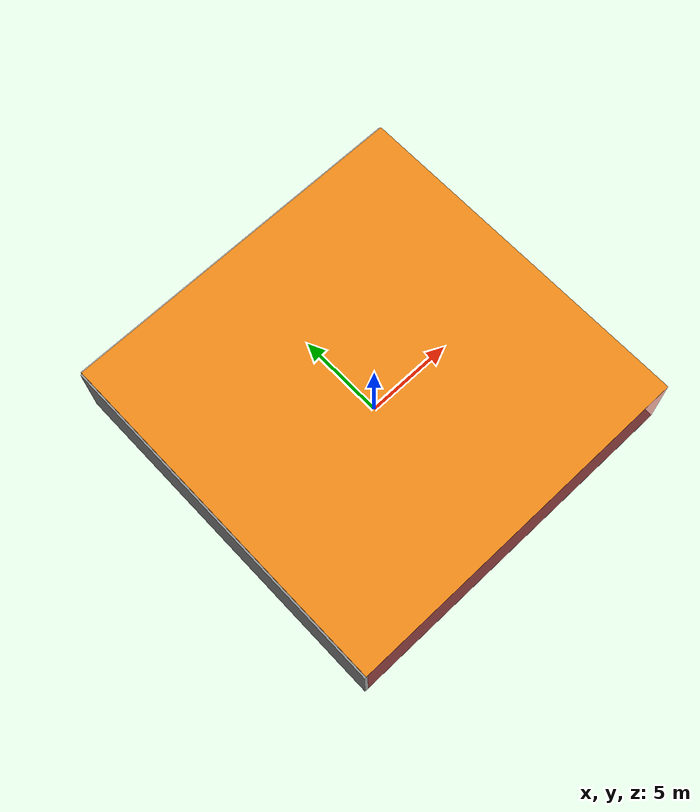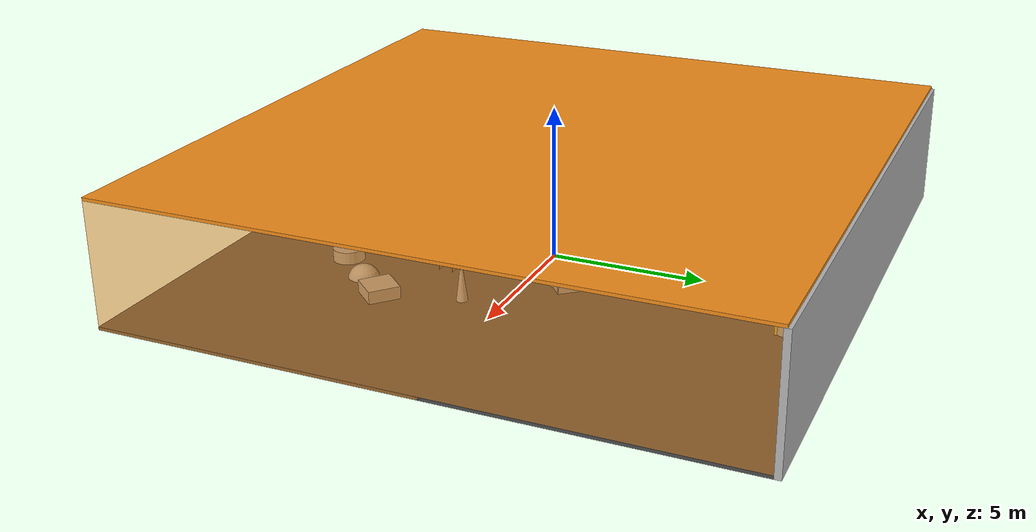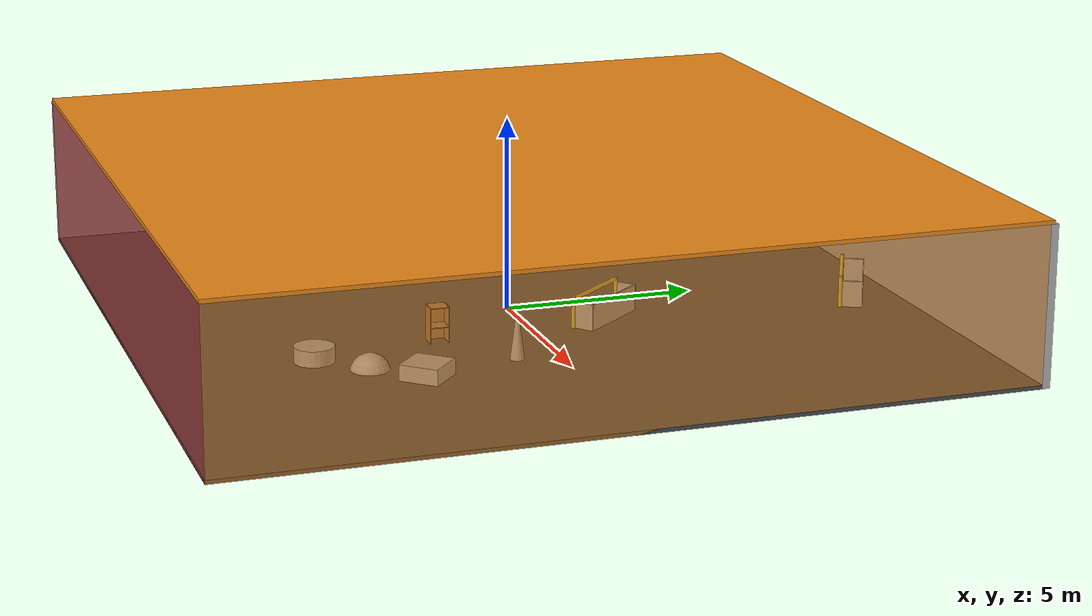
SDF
<sdf version="1.4">
 <world name="default">
  <physics type="ode">
   <max_step_size>0.001</max_step_size>
   <real_time_factor>1</real_time_factor>
   <real_time_update_rate>1000</real_time_update_rate>
   <gravity>0 0 -9.8</gravity>
  </physics>
  <scene><ambient>0.4 0.4 0.4 1</ambient><background>0.7 0.7 0.7 1</background><shadows>1</shadows></scene>
  <model name="Surrounding">
   <static>1</static>
   <link name="Ceiling">
    <collision name="Ceiling_Collision"><geometry><box><size>20 20 0.1</size></box></geometry></collision>
    <visual name="Ceiling_Visual">
     <geometry><box><size>20 20 0.1</size></box></geometry>
     <material>
      <script><uri>file://media/materials/scripts/gazebo.material</uri><name>Gazebo/Orange</name></script>
     </material>
    </visual>
    <pose>0 0 4.05 0 0 0</pose>
   </link>
   <link name="Wall_South">
    <collision name="Wall_South_Collision">
     <geometry><box><size>20 0 4</size></box></geometry>
     <pose>0 0 2 0 -0 0</pose>
    </collision>
    <visual name="Wall_South_Visual">
     <pose>0 0 2 0 -0 0</pose>
     <geometry><box><size>20 0 4</size></box></geometry>
     <material>
      <script><uri>file://media/materials/scripts/gazebo.material</uri><name>Gazebo/RedTransparent</name></script>
     </material>
    </visual>
    <velocity_decay><linear>0</linear><angular>0</angular></velocity_decay>
    <pose>0 -10 0 0 -0 0</pose>
   </link>
   <link name="Wall_East">
    <collision name="Wall_21_Collision">
     <geometry><box><size>20 0 4</size></box></geometry>
     <pose>0 0 2 0 -0 0</pose>
    </collision>
    <visual name="Wall_21_Visual">
     <pose>0 0 2 0 -0 0</pose>
     <geometry><box><size>20 0 4</size></box></geometry>
     <material>
      <script>
       <uri>file://media/materials/scripts/gazebo.material</uri>
       <name>Gazebo/OrangeTransparent</name>
      </script>
     </material>
    </visual>
    <velocity_decay><linear>0</linear><angular>0</angular></velocity_decay>
    <pose>10 0 0 0 -0 1.5708</pose>
   </link>
   <link name="Wall_North">
    <collision name="Wall_22_Collision">
     <geometry><box><size>20 0.2 4</size></box></geometry>
     <pose>0 0 2 0 -0 0</pose>
    </collision>
    <visual name="Wall_22_Visual">
     <pose>0 0 2 0 -0 0</pose>
     <geometry><box><size>20 0.2 4</size></box></geometry>
     <material>
      <script><uri>file://media/materials/scripts/gazebo.material</uri><name>Gazebo/LightOn</name></script>
     </material>
    </visual>
    <velocity_decay><linear>0</linear><angular>0</angular></velocity_decay>
    <pose>0 10 0 0 -0 0</pose>
   </link>
   <link name="Wall_West">
    <collision name="Wall_23_Collision">
     <geometry><box><size>20 0.2 4</size></box></geometry>
     <pose>0 0 2 0 -0 0</pose>
    </collision>
    <visual name="Wall_23_Visual">
     <pose>0 0 2 0 -0 0</pose>
     <geometry><box><size>20 0.2 4</size></box></geometry>
     <material>
      <script><uri>file://media/materials/scripts/gazebo.material</uri><name>Gazebo/Grey</name></script>
     </material>
    </visual>
    <velocity_decay><linear>0</linear><angular>0</angular></velocity_decay>
    <pose>-10 0 0 0 0 -1.5708</pose>
   </link>
   <link name="Ground_link">
    <collision name="collision">
     <pose>0 0 .05 0 -0 0</pose>
     <geometry><box><size>20 20 0.1</size></box></geometry>
    </collision>
    <visual name="visual">
     <pose>0 0 .05 0 -0 0</pose>
     <geometry><box><size>20 20 0.1</size></box></geometry>
     <material>
      <script><uri>file://media/materials/scripts/gazebo.material</uri><name>Gazebo/DarkGrey</name></script>
     </material>
    </visual>
   </link>
   <static>1</static>
  </model>
  <spherical_coordinates>
   <surface_model>EARTH_WGS84</surface_model>
   <latitude_deg>0</latitude_deg>
   <longitude_deg>0</longitude_deg>
   <elevation>0</elevation>
   <heading_deg>0</heading_deg>
  </spherical_coordinates>
  <light name="lightball_0" type="diffuse">
   <diffuse>0.8 0.8 0.8 1</diffuse>
   <specular>0.2 0.2 0.2 1</specular>
   <attenuation>
    <range>100</range>
    <constant>0.7</constant>
    <linear>0.01</linear>
    <quadratic>0.001</quadratic>
   </attenuation>
   <direction>-0.5 0.1 -0.9</direction>
   <pose>6.06867081789 -4.10507115041 1.21616874122 0 0 0</pose>
  </light>
  <light name="lightball_1" type="diffuse">
   <diffuse>0.8 0.8 0.8 1</diffuse>
   <specular>0.2 0.2 0.2 1</specular>
   <attenuation>
    <range>100</range>
    <constant>0.7</constant>
    <linear>0.01</linear>
    <quadratic>0.001</quadratic>
   </attenuation>
   <direction>-0.5 0.1 -0.9</direction>
   <pose>-5.44548857633 -0.35757964352 3.54678665557 0 0 0</pose>
  </light>
  <light name="lightball_2" type="diffuse">
   <diffuse>0.8 0.8 0.8 1</diffuse>
   <specular>0.2 0.2 0.2 1</specular>
   <attenuation>
    <range>100</range>
    <constant>0.7</constant>
    <linear>0.01</linear>
    <quadratic>0.001</quadratic>
   </attenuation>
   <direction>-0.5 0.1 -0.9</direction>
   <pose>2.1569736367 4.44563193047 3.25477571428 0 0 0</pose>
  </light>
  <light name="lightball_3" type="diffuse">
   <diffuse>0.8 0.8 0.8 1</diffuse>
   <specular>0.2 0.2 0.2 1</specular>
   <attenuation>
    <range>100</range>
    <constant>0.7</constant>
    <linear>0.01</linear>
    <quadratic>0.001</quadratic>
   </attenuation>
   <direction>-0.5 0.1 -0.9</direction>
   <pose>5.97734675703 8.81728490342 2.46383802609 0 0 0</pose>
  </light>
  <light name="lightball_4" type="diffuse">
   <diffuse>0.8 0.8 0.8 1</diffuse>
   <specular>0.2 0.2 0.2 1</specular>
   <attenuation>
    <range>100</range>
    <constant>0.7</constant>
    <linear>0.01</linear>
    <quadratic>0.001</quadratic>
   </attenuation>
   <direction>-0.5 0.1 -0.9</direction>
   <pose>9.01586063674 4.50409735118 2.68272333396 0 0 0</pose>
  </light>
  <light name="lightball_5" type="diffuse">
   <diffuse>0.8 0.8 0.8 1</diffuse>
   <specular>0.2 0.2 0.2 1</specular>
   <attenuation>
    <range>100</range>
    <constant>0.7</constant>
    <linear>0.01</linear>
    <quadratic>0.001</quadratic>
   </attenuation>
   <direction>-0.5 0.1 -0.9</direction>
   <pose>8.71745820092 2.80027822657 1.9734715996 0 0 0</pose>
  </light>
  <light name="lightball_6" type="diffuse">
   <diffuse>0.8 0.8 0.8 1</diffuse>
   <specular>0.2 0.2 0.2 1</specular>
   <attenuation>
    <range>100</range>
    <constant>0.7</constant>
    <linear>0.01</linear>
    <quadratic>0.001</quadratic>
   </attenuation>
   <direction>-0.5 0.1 -0.9</direction>
   <pose>-2.03845335595 7.63053845238 2.80675748723 0 0 0</pose>
  </light>
  <light name="lightball_7" type="diffuse">
   <diffuse>0.8 0.8 0.8 1</diffuse>
   <specular>0.2 0.2 0.2 1</specular>
   <attenuation>
    <range>100</range>
    <constant>0.7</constant>
    <linear>0.01</linear>
    <quadratic>0.001</quadratic>
   </attenuation>
   <direction>-0.5 0.1 -0.9</direction>
   <pose>5.83951414098 5.43269864487 3.04342228621 0 0 0</pose>
  </light>
  <light name="lightball_8" type="diffuse">
   <diffuse>0.8 0.8 0.8 1</diffuse>
   <specular>0.2 0.2 0.2 1</specular>
   <attenuation>
    <range>100</range>
    <constant>0.7</constant>
    <linear>0.01</linear>
    <quadratic>0.001</quadratic>
   </attenuation>
   <direction>-0.5 0.1 -0.9</direction>
   <pose>-5.1045888561 -2.52899557573 0.609968221003 0 0 0</pose>
  </light>
  <light name="lightball_9" type="diffuse">
   <diffuse>0.8 0.8 0.8 1</diffuse>
   <specular>0.2 0.2 0.2 1</specular>
   <attenuation>
    <range>100</range>
    <constant>0.7</constant>
    <linear>0.01</linear>
    <quadratic>0.001</quadratic>
   </attenuation>
   <direction>-0.5 0.1 -0.9</direction>
   <pose>5.53389664622 -1.63762723593 3.84243179162 0 0 0</pose>
  </light>
  <light name="lightball_10" type="diffuse">
   <diffuse>0.8 0.8 0.8 1</diffuse>
   <specular>0.2 0.2 0.2 1</specular>
   <attenuation>
    <range>100</range>
    <constant>0.7</constant>
    <linear>0.01</linear>
    <quadratic>0.001</quadratic>
   </attenuation>
   <direction>-0.5 0.1 -0.9</direction>
   <pose>3.66514725138 -8.08853105154 0.774634860574 0 0 0</pose>
  </light>
  <light name="lightball_11" type="diffuse">
   <diffuse>0.8 0.8 0.8 1</diffuse>
   <specular>0.2 0.2 0.2 1</specular>
   <attenuation>
    <range>100</range>
    <constant>0.7</constant>
    <linear>0.01</linear>
    <quadratic>0.001</quadratic>
   </attenuation>
   <direction>-0.5 0.1 -0.9</direction>
   <pose>3.38103329548 9.06644948865 3.28641239229 0 0 0</pose>
  </light>
  <include><uri>model://cabinet</uri><pose>2.38652115289 -2.58736604925 0 0 0 3.11565323145</pose></include>
  <include>
   <uri>model://robocup_3Dsim_goal</uri>
   <pose>1.71901420231 1.7666767078 0 0 0 0.689573394632</pose>
  </include>
  <include>
   <uri>model://robocup_3Dsim_goal</uri>
   <pose>1.88541262083 8.52149347632 0 0 0 1.11448772211</pose>
  </include>
  <include>
   <uri>model://textured_shapes</uri>
   <pose>3.97917238034 -4.73774652501 0 0 0 2.41463718397</pose>
  </include>
  <include>
   <uri>model://construction_cone</uri>
   <pose>4.31926039472 -1.1634806681 0 0 0 1.32544126647</pose>
  </include>
 </world>
</sdf>

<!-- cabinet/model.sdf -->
<sdf version="1.5">
  <model name="cabinet">
    <static>true</static>
    <link name="cabinet_bottom_plate">
      <inertial>
        <pose>0 0 -1 0 0 0</pose>
        <inertia>
          <ixx>2.050000</ixx>
          <ixy>0</ixy>
          <ixz>0</ixz>
          <iyy>2.050000</iyy>
          <iyz>0</iyz>
          <izz>2.050000</izz>
        </inertia>
        <mass>25.000000</mass>
      </inertial>
      <collision name="cabinet_bottom_plate_geom">
        <pose>0 0 0.010000 0 0 0</pose>
        <geometry>
          <box>
            <size>0.450000 0.450000 0.020000</size>
          </box>
        </geometry>
      </collision>
      <visual name="cabinet_bottom_plate_geom_visual">
        <pose>0 0 0.010000 0 0 0</pose>
        <geometry>
          <box>
            <size>0.450000 0.450000 0.020000</size>
          </box>
        </geometry>
        <material>
          <script>
            <uri>model://media/materials/scripts/gazebo.material</uri>
            <name>Gazebo/Wood</name>
          </script>
        </material>
      </visual>
      <collision name="cabinet_bottom_plate_geom_cabinet_back_plate">
        <pose>0.235000 0 0.510000 0 0 0</pose>
        <geometry>
          <box>
            <size>0.020000 0.450000 1.020000</size>
          </box>
        </geometry>
      </collision>
      <visual name="cabinet_bottom_plate_geom_cabinet_back_plate_visual">
        <pose>0.235000 0 0.510000 0 0 0</pose>
        <geometry>
          <box>
            <size>0.020000 0.450000 1.020000</size>
          </box>
        </geometry>
        <material>
          <script>
            <uri>model://media/materials/scripts/gazebo.material</uri>
            <name>Gazebo/Wood</name>
          </script>
        </material>
      </visual>
      <collision name="cabinet_bottom_plate_geom_cabinet_left_plate">
        <pose>0 0.235000 0.510000 0 0 0</pose>
        <geometry>
          <box>
            <size>0.450000 0.020000 1.020000</size>
          </box>
        </geometry>
      </collision>
      <visual name="cabinet_bottom_plate_geom_cabinet_left_plate_visual">
        <pose>0 0.235000 0.510000 0 0 0</pose>
        <geometry>
          <box>
            <size>0.450000 0.020000 1.020000</size>
          </box>
        </geometry>
        <material>
          <script>
            <uri>model://media/materials/scripts/gazebo.material</uri>
            <name>Gazebo/Wood</name>
          </script>
        </material>
      </visual>
      <collision name="cabinet_bottom_plate_geom_cabinet_middle_plate">
        <pose>0 0 0.510000 0 0 0</pose>
        <geometry>
          <box>
            <size>0.450000 0.450000 0.020000</size>
          </box>
        </geometry>
      </collision>
      <visual name="cabinet_bottom_plate_geom_cabinet_middle_plate_visual">
        <pose>0 0 0.510000 0 0 0</pose>
        <geometry>
          <box>
            <size>0.450000 0.450000 0.020000</size>
          </box>
        </geometry>
        <material>
          <script>
            <uri>model://media/materials/scripts/gazebo.material</uri>
            <name>Gazebo/Wood</name>
          </script>
        </material>
      </visual>
      <collision name="cabinet_bottom_plate_geom_cabinet_right_plate">
        <pose>0 -0.235000 0.510000 0 0 0</pose>
        <geometry>
          <box>
            <size>0.450000 0.020000 1.020000</size>
          </box>
        </geometry>
      </collision>
      <visual name="cabinet_bottom_plate_geom_cabinet_right_plate_visual">
        <pose>0 -0.235000 0.510000 0 0 0</pose>
        <geometry>
          <box>
            <size>0.450000 0.020000 1.020000</size>
          </box>
        </geometry>
        <material>
          <script>
            <uri>model://media/materials/scripts/gazebo.material</uri>
            <name>Gazebo/Wood</name>
          </script>
        </material>
      </visual>
      <collision name="cabinet_bottom_plate_geom_cabinet_top_plate">
        <pose>0 0 1.010000 0 0 0</pose>
        <geometry>
          <box>
            <size>0.450000 0.450000 0.020000</size>
          </box>
        </geometry>
      </collision>
      <visual name="cabinet_bottom_plate_geom_cabinet_top_plate_visual">
        <pose>0 0 1.010000 0 0 0</pose>
        <geometry>
          <box>
            <size>0.450000 0.450000 0.020000</size>
          </box>
        </geometry>
        <material>
          <script>
            <uri>model://media/materials/scripts/gazebo.material</uri>
            <name>Gazebo/Wood</name>
          </script>
        </material>
      </visual>
    </link>
  </model>
</sdf>

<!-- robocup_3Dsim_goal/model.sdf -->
<sdf version="1.5">
  <model name="robocup_3d_goal">
    <static>true</static>
    <link name="left_post">
      <pose>0 1.05 0.45 0 0 0</pose>
      <collision name="collision">
        <geometry>
          <cylinder>
            <radius>0.05</radius>
            <length>0.9</length>
          </cylinder>
        </geometry>
      </collision>
      <visual name="visual">
        <geometry>
          <cylinder>
            <radius>0.05</radius>
            <length>0.9</length>
          </cylinder>
        </geometry>
        <material>
          <script>
            <uri>file://media/materials/scripts/gazebo.material</uri>
            <name>Gazebo/ZincYellow</name>
          </script>
        </material>
      </visual>
    </link>
    <link name="left_support_horiz_lower">
      <pose>0.30 1.05 0.01 0 0 0</pose>
      <collision name="collision">
        <geometry>
          <box>
            <size>0.50 0.02 0.02</size>
          </box>
        </geometry>
      </collision>
      <visual name="visual">
        <geometry>
          <box>
            <size>0.50 0.02 0.02</size>
          </box>
        </geometry>
        <material>
          <script>
            <uri>file://media/materials/scripts/gazebo.material</uri>
            <name>Gazebo/White</name>
          </script>
        </material>
      </visual>
    </link>
    <link name="left_support_horiz_upper">
      <pose>0.30 1.05 0.79 0 0 0</pose>
      <collision name="collision">
        <geometry>
          <box>
            <size>0.50 0.02 0.02</size>
          </box>
        </geometry>
      </collision>
      <visual name="visual">
        <geometry>
          <box>
            <size>0.50 0.02 0.02</size>
          </box>
        </geometry>
        <material>
          <script>
            <uri>file://media/materials/scripts/gazebo.material</uri>
            <name>Gazebo/White</name>
          </script>
        </material>
      </visual>
    </link>
    <link name="left_support_vertical">
      <pose>0.56 1.05 0.4 0 1.5708 0</pose>
      <collision name="collision">
        <geometry>
          <box>
            <size>0.80 0.02 0.02</size>
          </box>
        </geometry>
      </collision>
      <visual name="visual">
        <geometry>
          <box>
            <size>0.80 0.02 0.02</size>
          </box>
        </geometry>
        <material>
          <script>
            <uri>file://media/materials/scripts/gazebo.material</uri>
            <name>Gazebo/White</name>
          </script>
        </material>
      </visual>
    </link>
    <link name="right_support_horiz_lower">
      <pose>0.30 -1.05 0.01 0 0 0</pose>
      <collision name="collision">
        <geometry>
          <box>
            <size>0.50 0.02 0.02</size>
          </box>
        </geometry>
      </collision>
      <visual name="visual">
        <geometry>
          <box>
            <size>0.50 0.02 0.02</size>
          </box>
        </geometry>
        <material>
          <script>
            <uri>file://media/materials/scripts/gazebo.material</uri>
            <name>Gazebo/White</name>
          </script>
        </material>
      </visual>
    </link>
    <link name="right_support_horiz_upper">
      <pose>0.30 -1.05 0.79 0 0 0</pose>
      <collision name="collision">
        <geometry>
          <box>
            <size>0.50 0.02 0.02</size>
          </box>
        </geometry>
      </collision>
      <visual name="visual">
        <geometry>
          <box>
            <size>0.50 0.02 0.02</size>
          </box>
        </geometry>
        <material>
          <script>
            <uri>file://media/materials/scripts/gazebo.material</uri>
            <name>Gazebo/White</name>
          </script>
        </material>
      </visual>
    </link>
    <link name="right_support_vertical">
      <pose>0.56 -1.05 0.4 0 1.5708 0</pose>
      <collision name="collision">
        <geometry>
          <box>
            <size>0.80 0.02 0.02</size>
          </box>
        </geometry>
      </collision>
      <visual name="visual">
        <geometry>
          <box>
            <size>0.80 0.02 0.02</size>
          </box>
        </geometry>
        <material>
          <script>
            <uri>file://media/materials/scripts/gazebo.material</uri>
            <name>Gazebo/White</name>
          </script>
        </material>
      </visual>
    </link>
    <link name="center_support_horiz_lower">
      <pose>0.56 0 0.01 0 1.5708 0</pose>
      <collision name="collision">
        <geometry>
          <box>
            <size>0.02 2.08 0.02</size>
          </box>
        </geometry>
      </collision>
      <visual name="visual">
        <geometry>
          <box>
            <size>0.02 2.08 0.02</size>
          </box>
        </geometry>
        <material>
          <script>
            <uri>file://media/materials/scripts/gazebo.material</uri>
            <name>Gazebo/White</name>
          </script>
        </material>
      </visual>
    </link>
    <link name="center_support_horiz_upper">
      <pose>0.56 0 0.79 0 1.5708 0</pose>
      <collision name="collision">
        <geometry>
          <box>
            <size>0.02 2.08 0.02</size>
          </box>
        </geometry>
      </collision>
      <visual name="visual">
        <geometry>
          <box>
            <size>0.02 2.08 0.02</size>
          </box>
        </geometry>
        <material>
          <script>
            <uri>file://media/materials/scripts/gazebo.material</uri>
            <name>Gazebo/White</name>
          </script>
        </material>
      </visual>
    </link>
    <link name="right_post">
      <pose>0 -1.05 0.45 0 0 0</pose>
      <collision name="collision">
        <geometry>
          <cylinder>
            <radius>0.05</radius>
            <length>0.9</length>
          </cylinder>
        </geometry>
      </collision>
      <visual name="visual">
        <geometry>
          <cylinder>
            <radius>0.05</radius>
            <length>0.9</length>
          </cylinder>
        </geometry>
        <material>
          <script>
            <uri>file://media/materials/scripts/gazebo.material</uri>
            <name>Gazebo/ZincYellow</name>
          </script>
        </material>
      </visual>
    </link>
    <link name="crossbar">
      <pose>0 0 0.85 1.57 1.57 0</pose>
      <collision name="collision">
        <geometry>
          <cylinder>
            <radius>0.05</radius>
            <length>2.0</length>
          </cylinder>
        </geometry>
      </collision>
      <visual name="visual">
        <geometry>
          <cylinder>
            <radius>0.05</radius>
            <length>2.0</length>
          </cylinder>
        </geometry>
        <material>
          <script>
            <uri>file://media/materials/scripts/gazebo.material</uri>
            <name>Gazebo/ZincYellow</name>
          </script>
        </material>
      </visual>
    </link>
    <link name="center_net">
      <pose>0.56 0 0.40 0 0 0</pose>
      <collision name="collision">
        <geometry>
          <box>
            <size>0.01 2.1 0.80</size>
          </box>
        </geometry>
      </collision>
      <visual name="visual">
        <geometry>
          <box>
            <size>0.01 2.1 0.80</size>
          </box>
        </geometry>
        <material>
          <script>
            <uri>model://../model_source/models/robocup09_spl_field/materials/scripts/</uri>
            <uri>model://../model_source/models/robocup09_spl_field/materials/textures/</uri>
            <name>RoboCup/Net</name>
          </script>
        </material>
      </visual>
    </link>
    <link name="left_net">
      <pose>0.30 1.05 0.40 0 0 0</pose>
      <collision name="collision">
        <geometry>
          <box>
            <size>0.50 0.01 0.76</size>
          </box>
        </geometry>
      </collision>
      <visual name="visual">
        <geometry>
          <box>
            <size>0.50 0.01 0.76</size>
          </box>
        </geometry>
        <material>
          <script>
            <uri>model://../model_source/models/robocup09_spl_field/materials/scripts/</uri>
            <uri>model://../model_source/models/robocup09_spl_field/materials/textures/</uri>
            <name>RoboCup/Net</name>
          </script>
        </material>
      </visual>
    </link>
    <link name="right_net">
      <pose>0.30 -1.05 0.40 0 0 0</pose>
      <collision name="collision">
        <geometry>
          <box>
            <size>0.50 0.01 0.76</size>
          </box>
        </geometry>
      </collision>
      <visual name="visual">
        <geometry>
          <box>
            <size>0.50 0.01 0.76</size>
          </box>
        </geometry>
        <material>
          <script>
            <uri>model://../model_source/models/robocup09_spl_field/materials/scripts/</uri>
            <uri>model://../model_source/models/robocup09_spl_field/materials/textures/</uri>
            <name>RoboCup/Net</name>
          </script>
        </material>
      </visual>
    </link>
  </model>
</sdf>

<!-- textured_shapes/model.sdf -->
<sdf version="1.6">
  <model name="textured_shapes">
    <pose>0 0 0.5 0 0 0</pose>
    <link name="box">
      <pose>0 -1.5 0 0 0 0</pose>
      <collision name="collision">
        <geometry>
          <box>
            <size>1 1 1</size>
          </box>
        </geometry>
      </collision>
      <visual name="visual">
        <geometry>
          <box>
            <size>1 1 1</size>
          </box>
        </geometry>
        <material>
          <script>
            <uri>model://../model_source/models/textured_shapes/materials/scripts</uri>
            <uri>model://../model_source/models/textured_shapes/materials/textures</uri>
            <name>TexturedShape/Squares</name>
          </script>
        </material>
      </visual>
    </link>
    <link name="sphere">
      <collision name="collision">
        <geometry>
          <sphere>
            <radius>0.5</radius>
          </sphere>
        </geometry>
      </collision>
      <visual name="visual">
        <geometry>
          <sphere>
            <radius>0.5</radius>
          </sphere>
        </geometry>
        <material>
          <script>
            <uri>model://../model_source/models/textured_shapes/materials/scripts</uri>
            <uri>model://../model_source/models/textured_shapes/materials/textures</uri>
            <name>TexturedShape/Squares</name>
          </script>
        </material>
      </visual>
    </link>
    <link name="cylinder">
      <pose>0 1.5 0 0 0 0</pose>
      <collision name="collision">
        <geometry>
          <cylinder>
            <radius>0.5</radius>
            <length>1</length>
          </cylinder>
        </geometry>
      </collision>
      <visual name="visual">
        <geometry>
          <cylinder>
            <radius>0.5</radius>
            <length>1</length>
          </cylinder>
        </geometry>
        <material>
          <script>
            <uri>model://../model_source/models/textured_shapes/materials/scripts</uri>
            <uri>model://../model_source/models/textured_shapes/materials/textures</uri>
            <name>TexturedShape/Squares</name>
          </script>
        </material>
      </visual>
    </link>
  </model>
</sdf>

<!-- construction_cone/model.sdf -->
<sdf version="1.5">
  <model name="Construction Cone">
    <link name="link">
      <collision name="collision">
        <geometry>
          <mesh>
            <scale>10 10 10</scale>
            <uri>file://isr-testbed/construction_cone/meshes/construction_cone.dae</uri>
          </mesh>
        </geometry>
      </collision>
      <visual name="visual">
        <geometry>
          <mesh>
            <scale>10 10 10</scale>
            <uri>file://isr-testbed/construction_cone/meshes/construction_cone.dae</uri>
          </mesh>
        </geometry>
      </visual>
    </link>
  </model>
</sdf>
